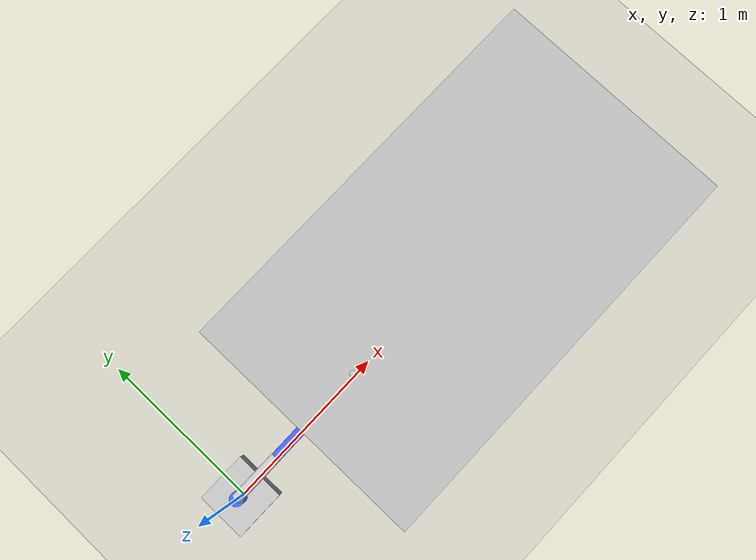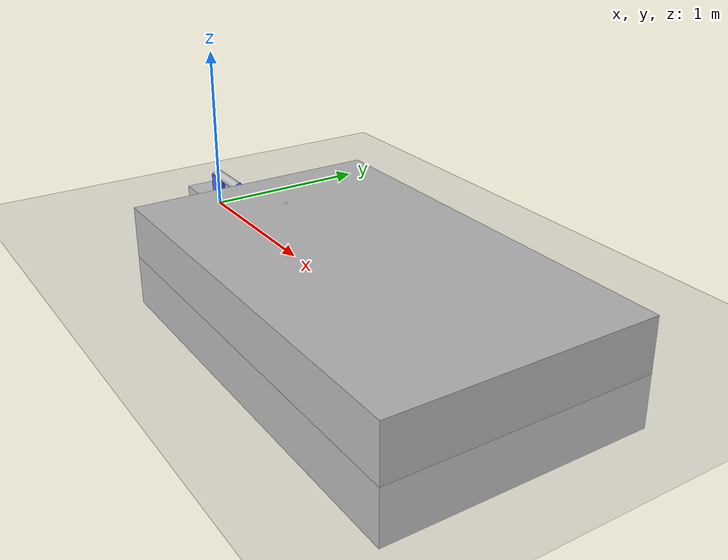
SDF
<sdf version="1.10">
 <world name="anchored">
  <scene><ambient>0.4 0.4 0.4 1</ambient></scene>
  <light name="sun" type="directional">
   <pose>0 0 10 0 0 0</pose>
   <diffuse>1 1 1 1</diffuse>
   <specular>0.1 0.1 0.1 1</specular>
   <attenuation>
    <range>100</range>
    <constant>0.9</constant>
    <linear>0.01</linear>
    <quadratic>0.001</quadratic>
   </attenuation>
   <direction>-0.5 0.5 -1</direction>
  </light>
  <model name="ground_plane">
   <static>true</static>
   <link name="link">
    <collision name="collision">
     <geometry><plane><normal>0 0 1</normal><size>200 200</size></plane></geometry>
    </collision>
    <visual name="visual">
     <geometry><plane><normal>0 0 1</normal><size>200 200</size></plane></geometry>
     <material>
      <ambient>0.6 0.6 0.6 1</ambient>
      <diffuse>0.7 0.7 0.7 1</diffuse>
      <specular>0.1 0.1 0.1 1</specular>
     </material>
    </visual>
   </link>
  </model>
  <include>
   <uri>file:///home/marco/ROS2-exercises-with-manipulators/src/prova_gz/prova_gz/urdf/robot_converted2.sdf</uri>
   <name>planar_arm_LASEDE</name>
  </include>
  <joint name="anchor_base" type="fixed">
   <parent>world</parent>
   <child>planar_arm_LASEDE::base_link</child>
  </joint>
  <model name="box">
   <static>true</static>
   <link name="link_box">
    <visual name="visual">
     <pose>1.75 0 0 0 0 0</pose>
     <geometry><box><size>2.5 1.5 0.6</size></box></geometry>
    </visual>
    <collision name="collision"><geometry><box><size>2.5 1.5 0.6</size></box></geometry></collision>
   </link>
  </model>
  <joint name="anchor_box" type="fixed"><parent>world</parent><child>box::link_box</child></joint>
 </world>
</sdf>

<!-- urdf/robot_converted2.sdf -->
<sdf version='1.11'>
  <model name='six_dof_arm'>
    <link name='base_link'>
      <inertial>
        <pose>0 0 0 0 0 0</pose>
        <mass>1</mass>
        <inertia>
          <ixx>0.01</ixx>
          <ixy>0</ixy>
          <ixz>0</ixz>
          <iyy>0.01</iyy>
          <iyz>0</iyz>
          <izz>0.01</izz>
        </inertia>
      </inertial>
      <collision name='base_link_collision'>
        <pose>0 0 0.050000000000000003 0 0 0</pose>
        <geometry>
          <box>
            <size>0.29999999999999999 0.29999999999999999 0.10000000000000001</size>
          </box>
        </geometry>
      </collision>
      <visual name='base_link_visual'>
        <pose>0 0 0.050000000000000003 0 0 0</pose>
        <geometry>
          <box>
            <size>0.29999999999999999 0.29999999999999999 0.10000000000000001</size>
          </box>
        </geometry>
        <material>
          <diffuse>0.75000006 0.75000006 0.75000006 1</diffuse>
          <ambient>0.75000006 0.75000006 0.75000006 1</ambient>
        </material>
      </visual>
    </link>

    <joint name='joint1' type='revolute'>
      <pose relative_to='base_link'>0 0 0.10000000000000001 0 0 0</pose>
      <parent>base_link</parent>
      <child>link1</child>
      <axis>
        <xyz>0 0 1</xyz>
        <limit>
          <lower>-3.1415999999999999</lower>
          <upper>3.1415999999999999</upper>
          <effort>100</effort>
          <velocity>2</velocity>
        </limit>
        <dynamics>
          <spring_reference>0</spring_reference>
          <spring_stiffness>0</spring_stiffness>
        </dynamics>
      </axis>
    </joint>

    <link name='link1'>
      <pose relative_to='joint1'>0 0 0 0 0 0</pose>
      <inertial>
        <pose>0 0 0 0 0 0</pose>
        <mass>1</mass>
        <inertia>
          <ixx>0.01</ixx>
          <ixy>0</ixy>
          <ixz>0</ixz>
          <iyy>0.01</iyy>
          <iyz>0</iyz>
          <izz>0.01</izz>
        </inertia>
      </inertial>
      <collision name='link1_collision'>
        <pose>0 0 0.050000000000000003 0 0 0</pose>
        <geometry>
          <cylinder>
            <length>0.10000000000000001</length>
            <radius>0.040000000000000001</radius>
          </cylinder>
        </geometry>
      </collision>
      <visual name='link1_visual'>
        <pose>0 0 0.050000000000000003 0 0 0</pose>
        <geometry>
          <cylinder>
            <length>0.10000000000000001</length>
            <radius>0.040000000000000001</radius>
          </cylinder>
        </geometry>
        <material>
          <diffuse>0.25 0.37500003 1 1</diffuse>
          <ambient>0.25 0.37500003 1 1</ambient>
        </material>
      </visual>
    </link>

    <joint name='joint2' type='revolute'>
      <pose relative_to='link1'>0 0 0.10000000000000001 0 0 0</pose>
      <parent>link1</parent>
      <child>link2</child>
      <axis>
        <xyz>0 1 0</xyz>
        <limit>
          <lower>-2.3561999999999999</lower>
          <upper>2.3561999999999999</upper>
          <effort>80</effort>
          <velocity>2</velocity>
        </limit>
        <dynamics>
          <spring_reference>0</spring_reference>
          <spring_stiffness>0</spring_stiffness>
        </dynamics>
      </axis>
    </joint>

    <link name='link2'>
      <pose relative_to='joint2'>0 0 0 0 0 0</pose>
      <inertial>
        <pose>0 0 0 0 0 0</pose>
        <mass>1</mass>
        <inertia>
          <ixx>0.01</ixx>
          <ixy>0</ixy>
          <ixz>0</ixz>
          <iyy>0.01</iyy>
          <iyz>0</iyz>
          <izz>0.01</izz>
        </inertia>
      </inertial>
      <collision name='link2_collision'>
        <pose>0.14999999999999999 0 0 0 1.5707963267948966 0</pose>
        <geometry>
          <cylinder>
            <length>0.29999999999999999</length>
            <radius>0.029999999999999999</radius>
          </cylinder>
        </geometry>
      </collision>
      <visual name='link2_visual'>
        <pose>0.14999999999999999 0 0 0 1.5707963267948966 0</pose>
        <geometry>
          <cylinder>
            <length>0.29999999999999999</length>
            <radius>0.029999999999999999</radius>
          </cylinder>
        </geometry>
        <material>
          <diffuse>0.75000006 0.75000006 0.75000006 1</diffuse>
          <ambient>0.75000006 0.75000006 0.75000006 1</ambient>
        </material>
      </visual>
    </link>
    <joint name='joint3' type='revolute'>
      <pose relative_to='link2'>0.29999999999999999 0 0 0 0 0</pose>
      <parent>link2</parent>
      <child>link3</child>
      <axis>
        <xyz>0 1 0</xyz>
        <limit>
          <lower>-2.3561999999999999</lower>
          <upper>2.3561999999999999</upper>
          <effort>80</effort>
          <velocity>2</velocity>
        </limit>
        <dynamics>
          <spring_reference>0</spring_reference>
          <spring_stiffness>0</spring_stiffness>
        </dynamics>
      </axis>
    </joint>
    <link name='link3'>
      <pose relative_to='joint3'>0 0 0 0 0 0</pose>
      <inertial>
        <pose>0 0 0 0 0 0</pose>
        <mass>1</mass>
        <inertia>
          <ixx>0.01</ixx>
          <ixy>0</ixy>
          <ixz>0</ixz>
          <iyy>0.01</iyy>
          <iyz>0</iyz>
          <izz>0.01</izz>
        </inertia>
      </inertial>
      <collision name='link3_collision'>
        <pose>0.14999999999999999 0 0 0 1.5707963267948966 0</pose>
        <geometry>
          <cylinder>
            <length>0.29999999999999999</length>
            <radius>0.028000000000000001</radius>
          </cylinder>
        </geometry>
      </collision>
      <visual name='link3_visual'>
        <pose>0.14999999999999999 0 0 0 1.5707963267948966 0</pose>
        <geometry>
          <cylinder>
            <length>0.29999999999999999</length>
            <radius>0.028000000000000001</radius>
          </cylinder>
        </geometry>
        <material>
          <diffuse>0.25 0.37500003 1 1</diffuse>
          <ambient>0.25 0.37500003 1 1</ambient>
        </material>
      </visual>
    </link>
    <joint name='joint4' type='revolute'>
      <pose relative_to='link3'>0.29999999999999999 0 0 0 0 0</pose>
      <parent>link3</parent>
      <child>link4</child>
      <axis>
        <xyz>0 1 0</xyz>
        <limit>
          <lower>-3.1415999999999999</lower>
          <upper>3.1415999999999999</upper>
          <effort>50</effort>
          <velocity>3</velocity>
        </limit>
        <dynamics>
          <spring_reference>0</spring_reference>
          <spring_stiffness>0</spring_stiffness>
        </dynamics>
      </axis>
    </joint>
    <link name='link4'>
      <pose relative_to='joint4'>0 0 0 0 0 0</pose>
      <inertial>
        <pose>0 0 0 0 0 0</pose>
        <mass>1</mass>
        <inertia>
          <ixx>0.01</ixx>
          <ixy>0</ixy>
          <ixz>0</ixz>
          <iyy>0.01</iyy>
          <iyz>0</iyz>
          <izz>0.01</izz>
        </inertia>
      </inertial>
      <collision name='link4_collision'>
        <pose>0.10000000000000001 0 0 0 1.5707963267948966 0</pose>
        <geometry>
          <cylinder>
            <length>0.20000000000000001</length>
            <radius>0.025000000000000001</radius>
          </cylinder>
        </geometry>
      </collision>
      <visual name='link4_visual'>
        <pose>0.10000000000000001 0 0 0 1.5707963267948966 0</pose>
        <geometry>
          <cylinder>
            <length>0.20000000000000001</length>
            <radius>0.025000000000000001</radius>
          </cylinder>
        </geometry>
        <material>
          <diffuse>0.75000006 0.75000006 0.75000006 1</diffuse>
          <ambient>0.75000006 0.75000006 0.75000006 1</ambient>
        </material>
      </visual>
    </link>
    <joint name='joint5' type='revolute'>
      <pose relative_to='link4'>0.20000000000000001 0 0 0 0 0</pose>
      <parent>link4</parent>
      <child>link5</child>
      <axis>
        <xyz>1 0 0</xyz>
        <limit>
          <lower>-3.1415999999999999</lower>
          <upper>3.1415999999999999</upper>
          <effort>40</effort>
          <velocity>3</velocity>
        </limit>
        <dynamics>
          <spring_reference>0</spring_reference>
          <spring_stiffness>0</spring_stiffness>
        </dynamics>
      </axis>
    </joint>
    <link name='link5'>
      <pose relative_to='joint5'>0 0 0 0 0 0</pose>
      <inertial>
        <pose>0 0 0 0 0 0</pose>
        <mass>1</mass>
        <inertia>
          <ixx>0.01</ixx>
          <ixy>0</ixy>
          <ixz>0</ixz>
          <iyy>0.01</iyy>
          <iyz>0</iyz>
          <izz>0.01</izz>
        </inertia>
      </inertial>
      <collision name='link5_collision'>
        <pose>0.050000000000000003 0 0 0 1.5707963267948966 0</pose>
        <geometry>
          <cylinder>
            <length>0.10000000000000001</length>
            <radius>0.021999999999999999</radius>
          </cylinder>
        </geometry>
      </collision>
      <visual name='link5_visual'>
        <pose>0.050000000000000003 0 0 0 1.5707963267948966 0</pose>
        <geometry>
          <cylinder>
            <length>0.10000000000000001</length>
            <radius>0.021999999999999999</radius>
          </cylinder>
        </geometry>
        <material>
          <diffuse>0.25 0.37500003 1 1</diffuse>
          <ambient>0.25 0.37500003 1 1</ambient>
        </material>
      </visual>
    </link>
    <joint name='joint6' type='revolute'>
      <pose relative_to='link5'>0.10000000000000001 0 0 0 0 0</pose>
      <parent>link5</parent>
      <child>tool0</child>
      <axis>
        <xyz>0 0 1</xyz>
        <limit>
          <lower>-3.1415999999999999</lower>
          <upper>3.1415999999999999</upper>
          <effort>30</effort>
          <velocity>4</velocity>
        </limit>
        <dynamics>
          <spring_reference>0</spring_reference>
          <spring_stiffness>0</spring_stiffness>
        </dynamics>
      </axis>
    </joint>
    <link name='tool0'>
      <pose relative_to='joint6'>0 0 0 0 0 0</pose>
      <inertial>
        <pose>0 0 0 0 0 0</pose>
        <mass>1</mass>
        <inertia>
          <ixx>0.01</ixx>
          <ixy>0</ixy>
          <ixz>0</ixz>
          <iyy>0.01</iyy>
          <iyz>0</iyz>
          <izz>0.01</izz>
        </inertia>
      </inertial>
      <collision name='tool0_collision'>
        <pose>0 0 0.050000000000000003 0 0 0</pose>
        <geometry>
          <cylinder>
            <length>0.10000000000000001</length>
            <radius>0.02</radius>
          </cylinder>
        </geometry>
      </collision>
      <visual name='tool0_visual'>
        <pose>0 0 0.050000000000000003 0 0 0</pose>
        <geometry>
          <cylinder>
            <length>0.10000000000000001</length>
            <radius>0.02</radius>
          </cylinder>
        </geometry>
        <material>
          <diffuse>0.75000006 0.75000006 0.75000006 1</diffuse>
          <ambient>0.75000006 0.75000006 0.75000006 1</ambient>
        </material>
      </visual>
    </link>

    <!-- Controller plugin -->
    <plugin filename="gz-sim-joint-position-controller-system"
            name="gz::sim::systems::JointPositionController">
      <joint_name>joint1</joint_name>
      <topic>/model/planar_arm/joint/joint1/cmd_pos</topic>
    </plugin>

    <plugin filename="gz-sim-joint-position-controller-system"
            name="gz::sim::systems::JointPositionController">
      <joint_name>joint2</joint_name>
      <topic>/model/planar_arm/joint/joint2/cmd_pos</topic>
    </plugin>

    <plugin filename="gz-sim-joint-position-controller-system"
            name="gz::sim::systems::JointPositionController">
      <joint_name>joint3</joint_name>
      <topic>/model/planar_arm/joint/joint3/cmd_pos</topic>
    </plugin>

    <plugin filename="gz-sim-joint-position-controller-system"
            name="gz::sim::systems::JointPositionController">
      <joint_name>joint4</joint_name>
      <topic>/model/planar_arm/joint/joint4/cmd_pos</topic>
    </plugin>

    <plugin filename="gz-sim-joint-position-controller-system"
            name="gz::sim::systems::JointPositionController">
      <joint_name>joint5</joint_name>
      <topic>/model/planar_arm/joint/joint5/cmd_pos</topic>
    </plugin>

    <plugin filename="gz-sim-joint-position-controller-system"
            name="gz::sim::systems::JointPositionController">
      <joint_name>joint6</joint_name>
      <topic>/model/planar_arm/joint/joint6/cmd_pos</topic>
    </plugin>
  </model>
</sdf>
